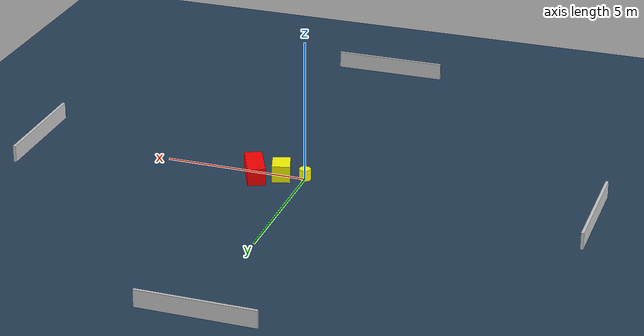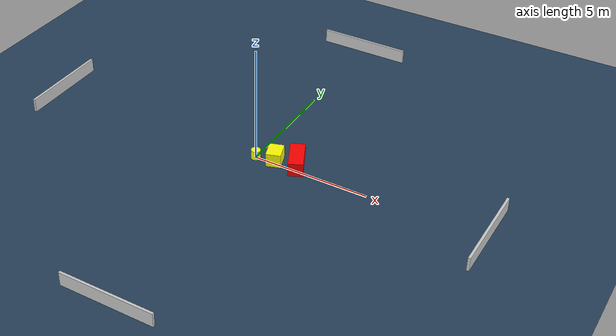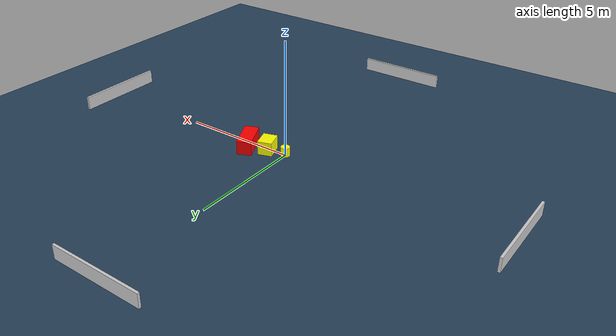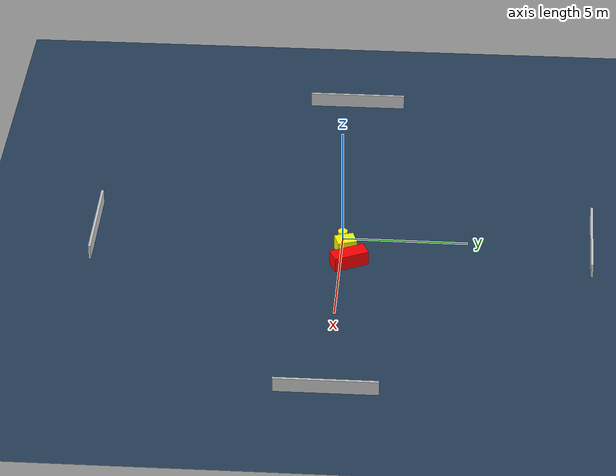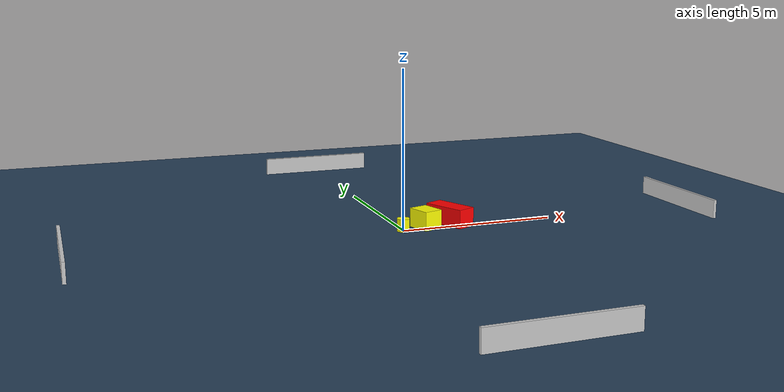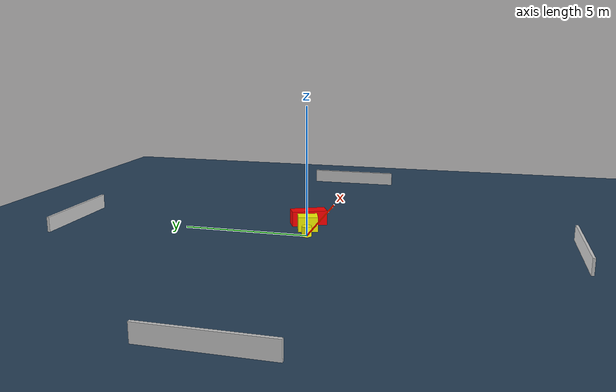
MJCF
<?xml version="1.0" ?>
<mujoco model="generated_environment">
  <option timestep="0.01" integrator="RK4" cone="elliptic"/>
  <default>
    <geom density="1"/>
  </default>
  <asset>
    <texture builtin="gradient" height="3072" name="skybox" rgb1="0.3 0.5 0.7" rgb2="0 0 0" type="skybox" width="512"/>
    <texture builtin="checker" height="300" name="groundplane" rgb1="0.2 0.3 0.4" rgb2="0.1 0.2 0.3" type="2d" width="300"/>
    <material name="groundplane" reflectance="0.2" texrepeat="5 5" texture="groundplane"/>
  </asset>
  <worldbody>
    <light dir="0 0 -1" directional="true" pos="0 0 1.5"/>
    <geom condim="3" friction="0.5 0.005 0.001" material="groundplane" name="floor" pos="0 0 0" size="0 0 0.05" type="plane"/>
    <body name="walls">
      <geom name="wall_1" condim="4" pos="-10.0 0.0 0.3" rgba="0.800000011920929 0.800000011920929 0.800000011920929 1.0" size="0.05 2.0 0.3" type="box"/>
      <geom name="wall_2" condim="4" pos="10.0 0.0 0.3" rgba="0.800000011920929 0.800000011920929 0.800000011920929 1.0" size="0.05 2.0 0.3" type="box"/>
      <geom name="wall_3" condim="4" pos="0.0 -10.0 0.3" rgba="0.800000011920929 0.800000011920929 0.800000011920929 1.0" size="2.0 0.05 0.3" type="box"/>
      <geom name="wall_4" condim="4" pos="0.0 10.0 0.3" rgba="0.800000011920929 0.800000011920929 0.800000011920929 1.0" size="2.0 0.05 0.3" type="box"/>
    </body>
    <body name="robot">
      <joint name="joint_x" type="slide" pos="0 0 0" axis="1 0 0"/>
      <joint name="joint_y" type="slide" pos="0 0 0" axis="0 1 0"/>
      <geom name="robot" type="cylinder" pos="0.0 0.0 0.2" size="0.2 0.2 0.0" mass="5.0" friction="1.0 0.005 0.0001" condim="4" rgba="1.0 1.0 0.0 1.0"/>
    </body>
    <body name="obstacle_1_movable">
      <geom name="obstacle_1_movable" condim="4" pos="0.8053850410985753 0.16070780427818274 0.3" euler="0 0 17.600448835027656" friction="0.0 0.005 0.001" rgba="1.0 1.0 0.0 1.0" size="0.30949476095418804 0.39015472769285764 0.3" type="box" mass="0.1"/>
      <joint type="free"/>
    </body>
    <body name="obstacle_2_static">
      <geom name="obstacle_2_static" condim="4" pos="1.6993284044731158 0.3552040552679511 0.3" euler="0 0 294.8657407204589" friction="0.0 0.005 0.001" rgba="1.0 0.0 0.0 1.0" size="0.7184770341193503 0.31007298453662124 0.3" type="box"/>
    </body>
  </worldbody>
  <actuator>
    <motor name="actuator_x" joint="joint_x" gear="1" ctrlrange="-1 1"/>
    <motor name="actuator_y" joint="joint_y" gear="1" ctrlrange="-1 1"/>
  </actuator>
</mujoco>
